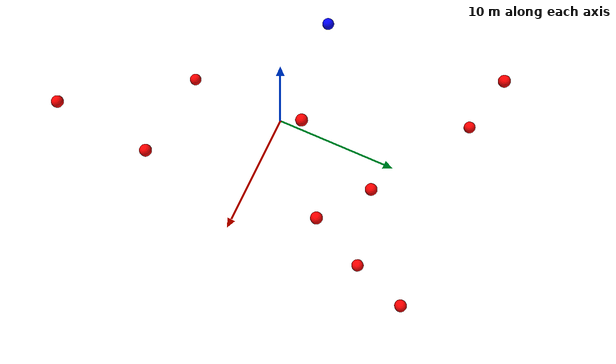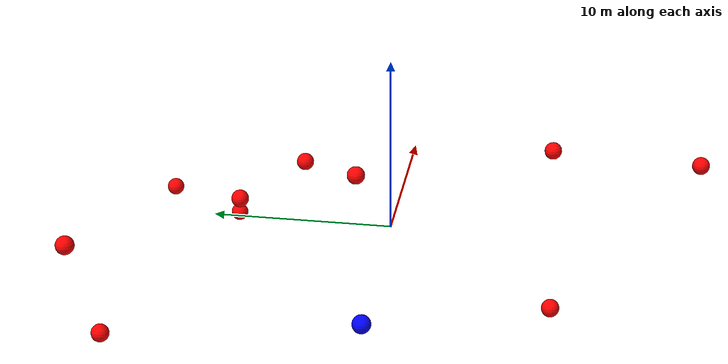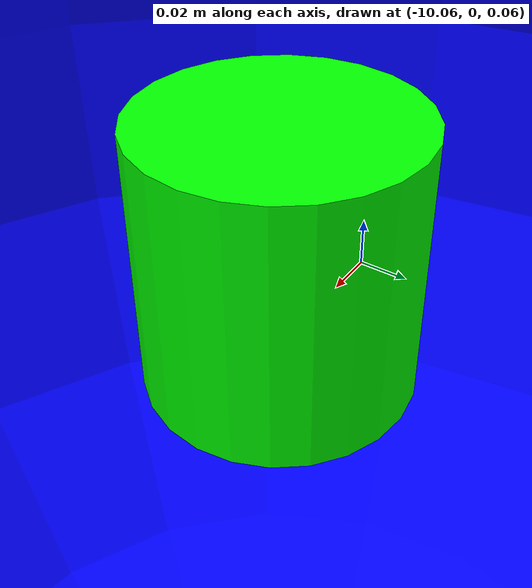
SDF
<?xml version="1.0" ?>
<sdf version="1.8">
    <world name="3d_world">
        <physics name="1ms" type="ode">
            <max_step_size>0.001</max_step_size>
            <real_time_factor>1.0</real_time_factor>
            <real_time_update_rate>1000.0</real_time_update_rate>
        </physics>
        <gravity>0 0 0</gravity>

        <plugin
            filename="gz-sim-physics-system"
            name="gz::sim::v8::systems::Physics">
        </plugin>
        <plugin
            filename="libignition-gazebo-user-commands-system.so"
            name="ignition::gazebo::systems::UserCommands">
        </plugin>
        <plugin
            filename="gz-sim-scene-broadcaster-system"
            name="gz::sim::systems::SceneBroadcaster">
        </plugin>
        <plugin
            filename="gz-sim-sensors-system"
            name="gz::sim::systems::Sensors">
            <render_engine>ogre2</render_engine>
        </plugin>

        <light type="directional" name="sun">
            <cast_shadows>true</cast_shadows>
            <pose>0 0 10 0 0 0</pose>
            <diffuse>0.8 0.8 0.8 1</diffuse>
            <specular>0.2 0.2 0.2 1</specular>
            <attenuation>
                <range>1000</range>
                <constant>0.9</constant>
                <linear>0.01</linear>
                <quadratic>0.001</quadratic>
            </attenuation>
            <direction>-0.5 0.1 -0.9</direction>
        </light>

        <!-- AGENTE -->
        <model name='agente' canonical_link='chassis'>
            <pose relative_to='world'>-10.0 0 0.0 0 0 0</pose>
            <link name='chassis'>
                <pose relative_to='__model__'>0.0 0 0.0 0 0 0</pose>
                <inertial>
                    <mass>1.14395</mass>
                    <inertia>
                        <ixx>0.095329</ixx>
                        <ixy>0</ixy>
                        <ixz>0</ixz>
                        <iyy>0.381317</iyy>
                        <iyz>0</iyz>
                        <izz>0.476646</izz>
                    </inertia>
                </inertial>
                <visual name='visual'>
                    <geometry>
                        <sphere>
                            <radius>0.5</radius>
                        </sphere>
                    </geometry>
                    <material>
                        <ambient>0.0 0.0 1.0 1</ambient>
                        <diffuse>0.0 0.0 1.0 1</diffuse>
                        <specular>0.0 0.0 1.0 1</specular>
                    </material>
                </visual>
                <collision name='collision'>
                    <geometry>
                        <sphere>
                            <radius>0.5</radius>
                        </sphere>
                    </geometry>
                </collision>
                <enable_gravity>false</enable_gravity>
            </link>

            <link name='lidar_link'>
                <pose relative_to='chassis'>0.0 0 0.1 0 0 0</pose>
                <inertial>
                    <mass>0.1</mass>
                    <inertia>
                        <ixx>0.000166667</ixx>
                        <iyy>0.000166667</iyy>
                        <izz>0.000166667</izz>
                    </inertia>
                </inertial>
                <collision name='collision'>
                    <geometry>
                        <cylinder>
                            <radius>0.05</radius>
                            <length>0.1</length>
                        </cylinder>
                    </geometry>
                </collision>
                <visual name='visual'>
                    <geometry>
                        <cylinder>
                            <radius>0.05</radius>
                            <length>0.1</length>
                        </cylinder>
                    </geometry>
                    <material>
                        <ambient>0.0 1.0 0.0 1</ambient>
                        <diffuse>0.0 1.0 0.0 1</diffuse>
                        <specular>0.0 1.0 0.0 1</specular>
                    </material>
                </visual>
                <sensor name="lidar" type="gpu_lidar">
                    <topic>scan</topic>
                    <update_rate>10</update_rate>
                    <lidar>
                        <scan>
                            <horizontal>
                                <samples>5000</samples>
                                <resolution>1</resolution>
                                <min_angle>-3.14159</min_angle>
                                <max_angle>3.14159</max_angle>
                            </horizontal>
                        </scan>
                        <range>
                            <min>0.1</min>
                            <max>10.0</max>
                            <resolution>0.01</resolution>
                        </range>
                    </lidar>
                    <visualize>true</visualize>
                    <always_on>true</always_on>
                    <update_rate>10</update_rate>
                    <pose_frame>lidar</pose_frame>
                </sensor>
                <enable_gravity>false</enable_gravity>
            </link>

            <joint name="lidar_joint" type="fixed">
                <parent>chassis</parent>
                <child>lidar_link</child>
            </joint>

            <plugin
                filename="ignition-gazebo-joint-state-publisher-system"
                name="ignition::gazebo::systems::JointStatePublisher">
            </plugin>
            <plugin
                filename="ignition-gazebo-odometry-publisher-system"
                name="ignition::gazebo::systems::OdometryPublisher">
                <dimensions>3</dimensions>
            </plugin>
            <plugin
                filename="ignition-gazebo-velocity-control-system"
                name="ignition::gazebo::systems::VelocityControl">
                <initial_linear>0.0 0 0</initial_linear>
                <initial_angular>0 0 0.0</initial_angular>
            </plugin>
            <plugin
                filename="libignition-gazebo-pose-publisher-system.so"
                name="ignition::gazebo::systems::PosePublisher">
                <topic>/agente/pose</topic>
                <frame_id>agente</frame_id>
                <update_rate>30</update_rate>
            </plugin>
        </model>

        <!-- OBSTACLE 1 -->
        <model name='obstacle_1' canonical_link='obstacle'>
            <static>false</static>
            <pose relative_to='world'>0.32 2.00 2.92 0 0 0</pose>
            <link name='obstacle'>
                <pose relative_to='__model__'>0.0 0 0.0 0 0 0</pose>
                <visual name='visual'>
                    <geometry>
                        <sphere>
                            <radius>0.50</radius>
                        </sphere>
                    </geometry>
                    <material>
                        <ambient>1.0 0.0 0.0 1</ambient>
                        <diffuse>1.0 0.0 0.0 1</diffuse>
                        <specular>1.0 0.0 0.0 1</specular>
                    </material>
                </visual>
                <collision name='collision'>
                    <geometry>
                        <sphere>
                            <radius>0.50</radius>
                        </sphere>
                    </geometry>
                </collision>
                <enable_gravity>false</enable_gravity>
            </link>

            <plugin
                filename="ignition-gazebo-velocity-control-system"
                name="ignition::gazebo::systems::VelocityControl">
                <initial_linear>-0.60 -0.60 -0.88</initial_linear>
                <initial_angular>0 0 0</initial_angular>
            </plugin>

            <plugin
                filename="ignition-gazebo-odometry-publisher-system"
                name="ignition::gazebo::systems::OdometryPublisher">
                <dimensions>3</dimensions>
            </plugin>
        </model>

        <!-- OBSTACLE 2 -->
        <model name='obstacle_2' canonical_link='obstacle'>
            <static>false</static>
            <pose relative_to='world'>7.55 10.49 -4.06 0 0 0</pose>
            <link name='obstacle'>
                <pose relative_to='__model__'>0.0 0 0.0 0 0 0</pose>
                <visual name='visual'>
                    <geometry>
                        <sphere>
                            <radius>0.50</radius>
                        </sphere>
                    </geometry>
                    <material>
                        <ambient>1.0 0.0 0.0 1</ambient>
                        <diffuse>1.0 0.0 0.0 1</diffuse>
                        <specular>1.0 0.0 0.0 1</specular>
                    </material>
                </visual>
                <collision name='collision'>
                    <geometry>
                        <sphere>
                            <radius>0.50</radius>
                        </sphere>
                    </geometry>
                </collision>
                <enable_gravity>false</enable_gravity>
            </link>

            <plugin
                filename="ignition-gazebo-velocity-control-system"
                name="ignition::gazebo::systems::VelocityControl">
                <initial_linear>-0.94 -1.64 0.64</initial_linear>
                <initial_angular>0 0 0</initial_angular>
            </plugin>

            <plugin
                filename="ignition-gazebo-odometry-publisher-system"
                name="ignition::gazebo::systems::OdometryPublisher">
                <dimensions>3</dimensions>
            </plugin>
        </model>

        <!-- OBSTACLE 3 -->
        <model name='obstacle_3' canonical_link='obstacle'>
            <static>false</static>
            <pose relative_to='world'>6.60 -16.88 1.68 0 0 0</pose>
            <link name='obstacle'>
                <pose relative_to='__model__'>0.0 0 0.0 0 0 0</pose>
                <visual name='visual'>
                    <geometry>
                        <sphere>
                            <radius>0.50</radius>
                        </sphere>
                    </geometry>
                    <material>
                        <ambient>1.0 0.0 0.0 1</ambient>
                        <diffuse>1.0 0.0 0.0 1</diffuse>
                        <specular>1.0 0.0 0.0 1</specular>
                    </material>
                </visual>
                <collision name='collision'>
                    <geometry>
                        <sphere>
                            <radius>0.50</radius>
                        </sphere>
                    </geometry>
                </collision>
                <enable_gravity>false</enable_gravity>
            </link>

            <plugin
                filename="ignition-gazebo-velocity-control-system"
                name="ignition::gazebo::systems::VelocityControl">
                <initial_linear>-0.80 1.83 -0.18</initial_linear>
                <initial_angular>0 0 0</initial_angular>
            </plugin>

            <plugin
                filename="ignition-gazebo-odometry-publisher-system"
                name="ignition::gazebo::systems::OdometryPublisher">
                <dimensions>3</dimensions>
            </plugin>
        </model>

        <!-- OBSTACLE 4 -->
        <model name='obstacle_4' canonical_link='obstacle'>
            <static>false</static>
            <pose relative_to='world'>-9.48 15.42 3.00 0 0 0</pose>
            <link name='obstacle'>
                <pose relative_to='__model__'>0.0 0 0.0 0 0 0</pose>
                <visual name='visual'>
                    <geometry>
                        <sphere>
                            <radius>0.50</radius>
                        </sphere>
                    </geometry>
                    <material>
                        <ambient>1.0 0.0 0.0 1</ambient>
                        <diffuse>1.0 0.0 0.0 1</diffuse>
                        <specular>1.0 0.0 0.0 1</specular>
                    </material>
                </visual>
                <collision name='collision'>
                    <geometry>
                        <sphere>
                            <radius>0.50</radius>
                        </sphere>
                    </geometry>
                </collision>
                <enable_gravity>false</enable_gravity>
            </link>

            <plugin
                filename="ignition-gazebo-velocity-control-system"
                name="ignition::gazebo::systems::VelocityControl">
                <initial_linear>1.39 -1.41 -0.27</initial_linear>
                <initial_angular>0 0 0</initial_angular>
            </plugin>

            <plugin
                filename="ignition-gazebo-odometry-publisher-system"
                name="ignition::gazebo::systems::OdometryPublisher">
                <dimensions>3</dimensions>
            </plugin>
        </model>

        <!-- OBSTACLE 5 -->
        <model name='obstacle_5' canonical_link='obstacle'>
            <static>false</static>
            <pose relative_to='world'>2.30 9.10 -0.17 0 0 0</pose>
            <link name='obstacle'>
                <pose relative_to='__model__'>0.0 0 0.0 0 0 0</pose>
                <visual name='visual'>
                    <geometry>
                        <sphere>
                            <radius>0.50</radius>
                        </sphere>
                    </geometry>
                    <material>
                        <ambient>1.0 0.0 0.0 1</ambient>
                        <diffuse>1.0 0.0 0.0 1</diffuse>
                        <specular>1.0 0.0 0.0 1</specular>
                    </material>
                </visual>
                <collision name='collision'>
                    <geometry>
                        <sphere>
                            <radius>0.50</radius>
                        </sphere>
                    </geometry>
                </collision>
                <enable_gravity>false</enable_gravity>
            </link>

            <plugin
                filename="ignition-gazebo-velocity-control-system"
                name="ignition::gazebo::systems::VelocityControl">
                <initial_linear>0.21 -1.69 0.03</initial_linear>
                <initial_angular>0 0 0</initial_angular>
            </plugin>

            <plugin
                filename="ignition-gazebo-odometry-publisher-system"
                name="ignition::gazebo::systems::OdometryPublisher">
                <dimensions>3</dimensions>
            </plugin>
        </model>

        <!-- OBSTACLE 6 -->
        <model name='obstacle_6' canonical_link='obstacle'>
            <static>false</static>
            <pose relative_to='world'>-7.63 14.66 -3.45 0 0 0</pose>
            <link name='obstacle'>
                <pose relative_to='__model__'>0.0 0 0.0 0 0 0</pose>
                <visual name='visual'>
                    <geometry>
                        <sphere>
                            <radius>0.50</radius>
                        </sphere>
                    </geometry>
                    <material>
                        <ambient>1.0 0.0 0.0 1</ambient>
                        <diffuse>1.0 0.0 0.0 1</diffuse>
                        <specular>1.0 0.0 0.0 1</specular>
                    </material>
                </visual>
                <collision name='collision'>
                    <geometry>
                        <sphere>
                            <radius>0.50</radius>
                        </sphere>
                    </geometry>
                </collision>
                <enable_gravity>false</enable_gravity>
            </link>

            <plugin
                filename="ignition-gazebo-velocity-control-system"
                name="ignition::gazebo::systems::VelocityControl">
                <initial_linear>0.98 -1.70 0.40</initial_linear>
                <initial_angular>0 0 0</initial_angular>
            </plugin>

            <plugin
                filename="ignition-gazebo-odometry-publisher-system"
                name="ignition::gazebo::systems::OdometryPublisher">
                <dimensions>3</dimensions>
            </plugin>
        </model>

        <!-- OBSTACLE 7 -->
        <model name='obstacle_7' canonical_link='obstacle'>
            <static>false</static>
            <pose relative_to='world'>-1.78 -9.08 -3.36 0 0 0</pose>
            <link name='obstacle'>
                <pose relative_to='__model__'>0.0 0 0.0 0 0 0</pose>
                <visual name='visual'>
                    <geometry>
                        <sphere>
                            <radius>0.50</radius>
                        </sphere>
                    </geometry>
                    <material>
                        <ambient>1.0 0.0 0.0 1</ambient>
                        <diffuse>1.0 0.0 0.0 1</diffuse>
                        <specular>1.0 0.0 0.0 1</specular>
                    </material>
                </visual>
                <collision name='collision'>
                    <geometry>
                        <sphere>
                            <radius>0.50</radius>
                        </sphere>
                    </geometry>
                </collision>
                <enable_gravity>false</enable_gravity>
            </link>

            <plugin
                filename="ignition-gazebo-velocity-control-system"
                name="ignition::gazebo::systems::VelocityControl">
                <initial_linear>-0.20 1.87 0.69</initial_linear>
                <initial_angular>0 0 0</initial_angular>
            </plugin>

            <plugin
                filename="ignition-gazebo-odometry-publisher-system"
                name="ignition::gazebo::systems::OdometryPublisher">
                <dimensions>3</dimensions>
            </plugin>
        </model>

        <!-- OBSTACLE 8 -->
        <model name='obstacle_8' canonical_link='obstacle'>
            <static>false</static>
            <pose relative_to='world'>9.28 14.93 -3.58 0 0 0</pose>
            <link name='obstacle'>
                <pose relative_to='__model__'>0.0 0 0.0 0 0 0</pose>
                <visual name='visual'>
                    <geometry>
                        <sphere>
                            <radius>0.50</radius>
                        </sphere>
                    </geometry>
                    <material>
                        <ambient>1.0 0.0 0.0 1</ambient>
                        <diffuse>1.0 0.0 0.0 1</diffuse>
                        <specular>1.0 0.0 0.0 1</specular>
                    </material>
                </visual>
                <collision name='collision'>
                    <geometry>
                        <sphere>
                            <radius>0.50</radius>
                        </sphere>
                    </geometry>
                </collision>
                <enable_gravity>false</enable_gravity>
            </link>

            <plugin
                filename="ignition-gazebo-velocity-control-system"
                name="ignition::gazebo::systems::VelocityControl">
                <initial_linear>-0.56 -1.87 0.45</initial_linear>
                <initial_angular>0 0 0</initial_angular>
            </plugin>

            <plugin
                filename="ignition-gazebo-odometry-publisher-system"
                name="ignition::gazebo::systems::OdometryPublisher">
                <dimensions>3</dimensions>
            </plugin>
        </model>

        <!-- OBSTACLE 9 -->
        <model name='obstacle_9' canonical_link='obstacle'>
            <static>false</static>
            <pose relative_to='world'>7.35 -8.41 1.63 0 0 0</pose>
            <link name='obstacle'>
                <pose relative_to='__model__'>0.0 0 0.0 0 0 0</pose>
                <visual name='visual'>
                    <geometry>
                        <sphere>
                            <radius>0.50</radius>
                        </sphere>
                    </geometry>
                    <material>
                        <ambient>1.0 0.0 0.0 1</ambient>
                        <diffuse>1.0 0.0 0.0 1</diffuse>
                        <specular>1.0 0.0 0.0 1</specular>
                    </material>
                </visual>
                <collision name='collision'>
                    <geometry>
                        <sphere>
                            <radius>0.50</radius>
                        </sphere>
                    </geometry>
                </collision>
                <enable_gravity>false</enable_gravity>
            </link>

            <plugin
                filename="ignition-gazebo-velocity-control-system"
                name="ignition::gazebo::systems::VelocityControl">
                <initial_linear>-0.45 1.43 -0.28</initial_linear>
                <initial_angular>0 0 0</initial_angular>
            </plugin>

            <plugin
                filename="ignition-gazebo-odometry-publisher-system"
                name="ignition::gazebo::systems::OdometryPublisher">
                <dimensions>3</dimensions>
            </plugin>
        </model>

        <!-- OBSTACLE 10 -->
        <model name='obstacle_10' canonical_link='obstacle'>
            <static>false</static>
            <pose relative_to='world'>6.44 6.09 0.30 0 0 0</pose>
            <link name='obstacle'>
                <pose relative_to='__model__'>0.0 0 0.0 0 0 0</pose>
                <visual name='visual'>
                    <geometry>
                        <sphere>
                            <radius>0.50</radius>
                        </sphere>
                    </geometry>
                    <material>
                        <ambient>1.0 0.0 0.0 1</ambient>
                        <diffuse>1.0 0.0 0.0 1</diffuse>
                        <specular>1.0 0.0 0.0 1</specular>
                    </material>
                </visual>
                <collision name='collision'>
                    <geometry>
                        <sphere>
                            <radius>0.50</radius>
                        </sphere>
                    </geometry>
                </collision>
                <enable_gravity>false</enable_gravity>
            </link>

            <plugin
                filename="ignition-gazebo-velocity-control-system"
                name="ignition::gazebo::systems::VelocityControl">
                <initial_linear>-1.52 -1.30 -0.06</initial_linear>
                <initial_angular>0 0 0</initial_angular>
            </plugin>

            <plugin
                filename="ignition-gazebo-odometry-publisher-system"
                name="ignition::gazebo::systems::OdometryPublisher">
                <dimensions>3</dimensions>
            </plugin>
        </model>

    </world>
</sdf>
